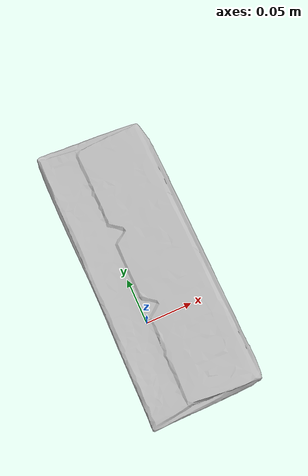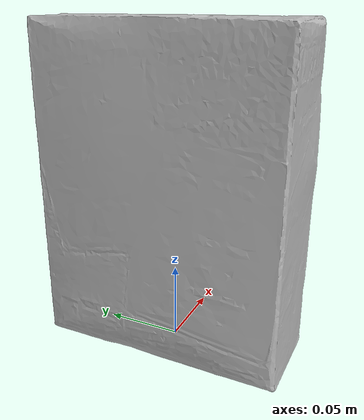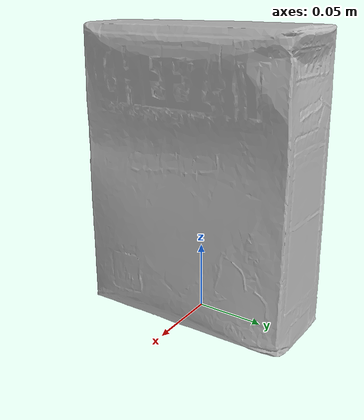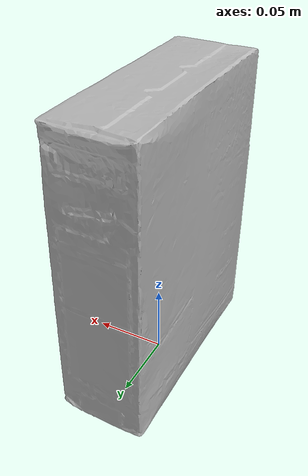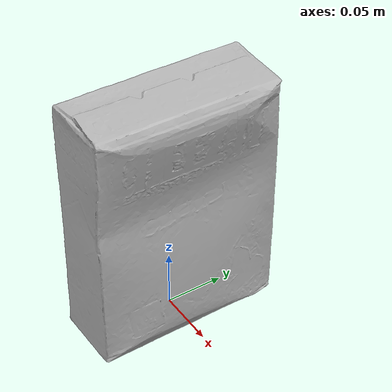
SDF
<?xml version="1.0"?>
<sdf version="1.6">
  <model name="cracker_box">
    <link name="link">
      <inertial>
        <mass>0.411</mass>
      </inertial>
      <collision name="collision">
        <pose>0 0 0.105 0 0 0</pose>
        <geometry>
          <box>
            <size>0.060 0.158 0.210</size>
          </box>
        </geometry>
      </collision>
      <visual name="visual">
        <pose>0.015 0.015 0 0 0 0</pose>
        <geometry>
          <mesh>
            <uri>model://cracker_box/meshes/textured.dae</uri>
          </mesh>
        </geometry>
      </visual>
    </link>
  </model>
</sdf>
